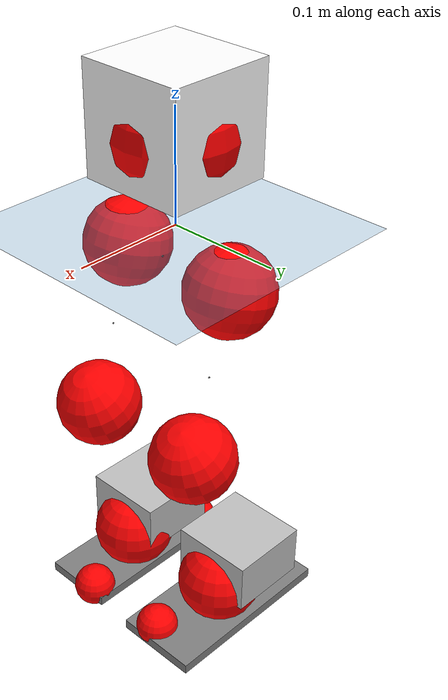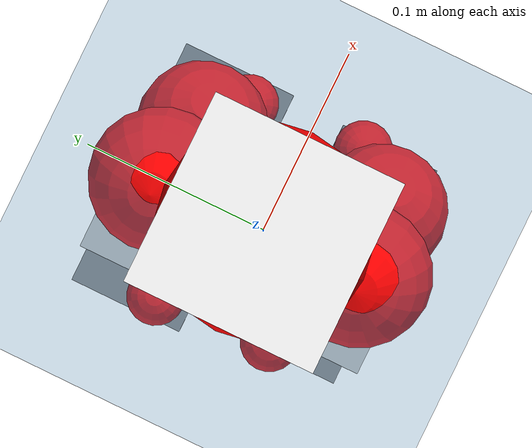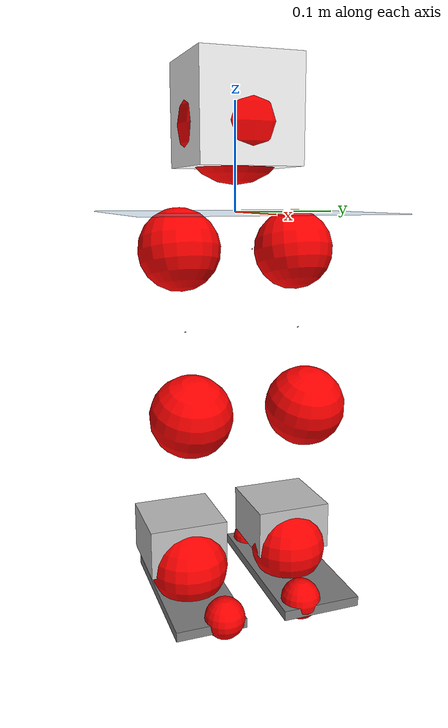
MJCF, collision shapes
<mujoco model="pi_12dof_release_v1">
  <compiler angle="radian" assetdir="assets" balanceinertia="true" inertiafromgeom="false"/>

  <option timestep="0.005" density="1.2" viscosity="2e-05"/>

  <size nkey="1"/>

  <visual>
    <quality shadowsize="8192"/>
    <map shadowclip="0.5"/>
  </visual>

  <default>
    <default class="/">
      <joint armature="0.01" damping="0.01" frictionloss="0.01"/>
      <geom contype="0" conaffinity="0" group="1" solref="-1000 -80"/>
      <site size="0.01 0.005 0.005" group="5"/>
      <general forcelimited="true" biastype="affine" gainprm="20" biasprm="0 -20 -0.5"/>
      <default class="foot">
        <geom size="0.0845 0.036 0.005" type="box" condim="6" group="4" priority="1" friction="0.9 0.2 0.2" solimp="0.015 1 0.005"/>
      </default>
      <default class="reward_collision_sphere">
        <geom group="5" rgba="1 0 0 1"/>
      </default>
    </default>
  </default>

  <asset>
    <texture type="skybox" colorspace="auto" name="//unnamed_texture_0" builtin="gradient" rgb1="0.95 0.95 0.95" rgb2="0.95 0.95 0.95" width="100" height="600"/>
    <texture type="2d" colorspace="auto" name="texplane" builtin="checker" rgb1="0.345 0.575 0.748" rgb2="0.345 0.575 0.748" markrgb="1 1 1" width="512" height="512"/>
    <material name="MatPlane" class="/" texture="texplane" texuniform="true" texrepeat="2 2" specular="0.9"/>
    <mesh name="baselink_1" class="/" file="baselink_1.STL"/>
    <mesh name="r_hip_pitch_link" class="/" file="r_hip_pitch_link.STL"/>
    <mesh name="r_hip_roll_link" class="/" file="r_hip_roll_link.STL"/>
    <mesh name="r_thigh_link" class="/" file="r_thigh_link.STL"/>
    <mesh name="r_calf_link" class="/" file="r_calf_link.STL"/>
    <mesh name="r_ankle_pitch_link" class="/" file="r_ankle_pitch_link.STL"/>
    <mesh name="r_ankle_roll_link" class="/" file="r_ankle_roll_link.STL"/>
    <mesh name="l_hip_pitch_link" class="/" file="l_hip_pitch_link.STL"/>
    <mesh name="l_hip_roll_link" class="/" file="l_hip_roll_link.STL"/>
    <mesh name="l_thigh_link" class="/" file="l_thigh_link.STL"/>
    <mesh name="l_calf_link" class="/" file="l_calf_link.STL"/>
    <mesh name="l_ankle_pitch_link" class="/" file="l_ankle_pitch_link.STL"/>
    <mesh name="l_ankle_roll_link" class="/" file="l_ankle_roll_link.STL"/>
  </asset>

  <worldbody>
    <geom name="floor" class="/" size="100 100 0.125" type="plane" group="0" material="MatPlane"/>
    <light name="toplight_shadow" class="/" pos="0 0 5" dir="0.0990148 0.0990148 -0.990148" type="directional" ambient="0.04 0.04 0.04" diffuse="0.55 0.55 0.55" specular="0.12 0.12 0.12"/>
    <light name="toplight_fill" class="/" pos="0 0 5" dir="0.0990148 0.0990148 -0.990148" type="directional" castshadow="false" ambient="0.04 0.04 0.04" diffuse="0.3 0.3 0.3" specular="0.08 0.08 0.08"/>
    <body name="trunk" pos="-0.0001964 -0.000405607 0.000351062" quat="1 -1.96542e-05 -1.15764e-05 -1.91445e-05">
      <inertial pos="0.00152534 -0.00152726 0.044616" quat="0.70045 0.0158231 0.0142704 0.713384" mass="1.96658" diaginertia="0.0118061 0.00236282 0.00695401"/>
      <joint name="//unnamed_joint_0" type="free"/>
      <geom name="//unnamed_geom_1" class="/" type="mesh" density="0" rgba="1 1 1 1" mesh="baselink_1"/>
      <geom name="//unnamed_geom_2" class="/" size="0.0484645 0.0484645 0.0484645" pos="0 0 0.0886739" type="box" rgba="1 1 1 1"/>
      <geom name="//unnamed_geom_3" class="reward_collision_sphere" size="0.0533109" pos="0 0 0.0775897"/>
      <site name="imu" class="/" pos="0.00122727 -0.00370231 -0.0019755" size="0.0096929"/>
      <camera name="track" class="/" pos="0 -1.5261 0" quat="0.707107 0.707107 0 0" mode="trackcom"/>
      <camera name="ego_camera" class="/" pos="0.0777297 0 0.199516" quat="-0.5 -0.5 0.5 0.5"/>
      <body name="r_hip_pitch_link" pos="-0.00014951 -0.015189 -0.0348288" quat="0.992221 -7.29467e-05 -0.12449 -0.000134228">
        <inertial pos="0.000807509 -0.0430959 -0.000711646" quat="-0.0195857 0.707029 -0.0299848 0.706277" mass="0.336783" diaginertia="0.00012967 2.53644e-05 0.000140065"/>
        <joint name="r_hip_pitch_joint" class="/" pos="0 0 0" axis="0.00152333 -0.999986 0.0051525" stiffness="5.21249e-05" range="-1.74539 1.26479" armature="0.00954504" damping="0.0134777" frictionloss="0.00978775"/>
        <geom name="//unnamed_geom_4" class="/" type="mesh" density="0" rgba="0.75294 0.75294 0.75294 1" mesh="r_hip_pitch_link"/>
        <geom name="//unnamed_geom_5" class="/" size="0.000484645 0.000484645 0.000484645" type="box" rgba="0.75294 0.75294 0.75294 1"/>
        <body name="r_hip_roll_link" pos="0.00136929 -0.0402527 -0.000200562" quat="1 8.30926e-06 5.75408e-05 -1.35772e-05">
          <inertial pos="-0.000733255 -0.000819987 -0.0672783" quat="0.707718 -0.082775 -0.0797837 0.697078" mass="0.354185" diaginertia="0.000400974 7.1751e-05 0.00021612"/>
          <joint name="r_hip_roll_joint" class="/" pos="0 0 0" axis="-0.999997 0.00151827 -0.00167095" stiffness="0.000878249" range="-0.116983 0.510963" armature="0.00979203" damping="0.00451818" frictionloss="0.00966429"/>
          <geom name="//unnamed_geom_6" class="/" type="mesh" density="0" rgba="0.75294 0.75294 0.75294 1" mesh="r_hip_roll_link"/>
          <geom name="//unnamed_geom_7" class="/" size="0.000484645 0.000484645 0.000484645" type="box" rgba="0.75294 0.75294 0.75294 1"/>
          <geom name="//unnamed_geom_8" class="reward_collision_sphere" size="0.0387716"/>
          <body name="r_thigh_link" pos="0.000607345 -0.000747305 -0.0767033" quat="1 6.43462e-05 -4.83975e-05 0.000332398">
            <inertial pos="0.000399086 0.000561771 -0.0545397" quat="0.737647 0.675186 0.000624384 -0.000267592" mass="0.102233" diaginertia="0.00014926 2.50697e-05 9.50051e-05"/>
            <joint name="r_thigh_joint" class="/" pos="0 0 0" axis="1.2886e-05 0.000472015 -1" range="-0.30015 0.593575" armature="0.0101572" damping="0.00604822" frictionloss="0.00971252"/>
            <geom name="//unnamed_geom_9" class="/" type="mesh" density="0" rgba="0.75294 0.75294 0.75294 1" mesh="r_thigh_link"/>
            <geom name="//unnamed_geom_10" class="/" size="0.000484645 0.000484645 0.000484645" type="box" rgba="0.75294 0.75294 0.75294 1"/>
            <body name="r_calf_link" pos="0.000132264 -0.000949918 -0.0779129" quat="0.947687 5.94155e-05 0.319202 3.74536e-06">
              <inertial pos="0.000675759 -0.0009212 -0.0775117" quat="0.999985 -0.00306293 0.000111557 0.00459432" mass="0.733312" diaginertia="0.00425831 0.000884313 0.000295179"/>
              <joint name="r_calf_joint" class="/" pos="0 0 0" axis="-0.00173462 -0.999997 -0.0018919" range="-1.60843 0.630476" armature="0.00980476" damping="0.00795772" frictionloss="0.00923776"/>
              <geom name="//unnamed_geom_11" class="/" type="mesh" density="0" rgba="0.75294 0.75294 0.75294 1" mesh="r_calf_link"/>
              <geom name="//unnamed_geom_12" class="/" size="0.000484645 0.000484645 0.000484645" type="box" rgba="0.75294 0.75294 0.75294 1"/>
              <geom name="//unnamed_geom_13" class="reward_collision_sphere" size="0.0387716"/>
              <body name="r_ankle_pitch_link" pos="0.00204314 0.00250574 -0.156311" quat="0.980008 0.000216173 -0.198958 -0.000419114">
                <inertial pos="0.00582647 0.00079287 -0.000445385" quat="4.60529e-05 0.705684 -0.00178212 0.708524" mass="0.161748" diaginertia="0.000372633 5.78747e-05 0.000204819"/>
                <joint name="r_ankle_pitch_joint" class="/" pos="0 0 0" axis="-0.00944464 -0.999953 0.00208636" stiffness="0.00111674" range="-1.31804 0.532785" armature="0.00963347" damping="0.00786729" frictionloss="0.0101289"/>
                <geom name="//unnamed_geom_14" class="/" type="mesh" density="0" rgba="0.75294 0.75294 0.75294 1" mesh="r_ankle_pitch_link"/>
                <geom name="//unnamed_geom_15" class="/" size="0.0378023 0.0387716 0.0242322" type="box" rgba="0.75294 0.75294 0.75294 1"/>
                <body name="r_ankle_roll_link" pos="0.0772837 0.00248278 -0.000103701" quat="1 -0.000193517 -0.000524718 4.02922e-05">
                  <inertial pos="-0.0257617 0.00016808 -0.0162449" quat="0.558238 0.430493 0.436274 0.559206" mass="0.474167" diaginertia="0.00135303 0.000266499 0.000469833"/>
                  <joint name="r_ankle_roll_joint" class="/" pos="0 0 0" axis="-0.999999 0.000335532 0.00105875" range="-0.187491 0.151223" armature="0.0095948" damping="0.0129588" frictionloss="0.0101315"/>
                  <geom name="//unnamed_geom_16" class="/" type="mesh" density="0" rgba="0.75294 0.75294 0.75294 1" mesh="r_ankle_roll_link"/>
                  <geom name="//unnamed_geom_17" class="/" type="mesh" rgba="0.75294 0.75294 0.75294 1" mesh="r_ankle_roll_link"/>
                  <geom name="right_foot" class="foot" size="0.0773855 0.0341549 0.00459156" pos="-0.0528562 0 -0.0487706"/>
                  <geom name="//unnamed_geom_19" class="reward_collision_sphere" size="0.0387716" pos="-0.0518198 0 -0.0221685"/>
                  <geom name="//unnamed_geom_20" class="reward_collision_sphere" size="0.0193858" pos="0.0155459 0.015261 -0.0443369"/>
                  <geom name="//unnamed_geom_21" class="reward_collision_sphere" size="0.0193858" pos="-0.124367 0.015261 -0.0443369"/>
                  <site name="right_foot" class="foot" pos="-0.0528562 0 -0.0487706" size="0.0096929"/>
                </body>
              </body>
            </body>
          </body>
        </body>
      </body>
      <body name="l_hip_pitch_link" pos="-0.000969881 0.0175886 -0.0356399" quat="0.992168 0.000112196 -0.124912 -0.000294649">
        <inertial pos="0.000831604 0.0400602 -0.00125017" quat="-0.0407277 0.704518 0.0292719 0.707911" mass="0.348106" diaginertia="0.000151458 2.68652e-05 0.000165964"/>
        <joint name="l_hip_pitch_joint" class="/" pos="0 0 0" axis="-0.00095113 0.999999 0.00108312" range="-1.2492 1.75071" armature="0.00974418" damping="0.000663407" frictionloss="0.00957312"/>
        <geom name="//unnamed_geom_22" class="/" type="mesh" density="0" rgba="0.75294 0.75294 0.75294 1" mesh="l_hip_pitch_link"/>
        <geom name="//unnamed_geom_23" class="/" size="0.000484645 0.000484645 0.000484645" type="box" rgba="0.75294 0.75294 0.75294 1"/>
        <body name="l_hip_roll_link" pos="0.000798848 0.0427554 -0.00159709" quat="1 -5.44745e-06 3.20845e-05 6.24551e-06">
          <inertial pos="-0.000866492 -0.00044792 -0.0694692" quat="0.700634 -0.073543 -0.0755104 0.705692" mass="0.358885" diaginertia="0.000395459 7.01064e-05 0.00021161"/>
          <joint name="l_hip_roll_joint" class="/" pos="0 0 0" axis="-1 0.000139114 -0.000237601" range="-0.532966 0.112223" armature="0.0100024" damping="0.00713662" frictionloss="0.00925037"/>
          <geom name="//unnamed_geom_24" class="/" type="mesh" density="0" rgba="0.75294 0.75294 0.75294 1" mesh="l_hip_roll_link"/>
          <geom name="//unnamed_geom_25" class="/" size="0.000484645 0.000484645 0.000484645" type="box" rgba="0.75294 0.75294 0.75294 1"/>
          <geom name="//unnamed_geom_26" class="reward_collision_sphere" size="0.0387716"/>
          <body name="l_thigh_link" pos="0.000459598 -0.00238513 -0.0765062" quat="1 1.21019e-05 9.097e-05 3.08095e-05">
            <inertial pos="0.000532939 -0.00139704 -0.0524862" quat="0.675548 0.737316 0.000504639 -0.000131524" mass="0.101175" diaginertia="0.000150332 2.43333e-05 9.60498e-05"/>
            <joint name="l_thigh_joint" class="/" pos="0 0 0" axis="0.000171734 5.17579e-05 -1" range="-0.590515 0.29589" armature="0.00995439" damping="0.00132578" frictionloss="0.00977055"/>
            <geom name="//unnamed_geom_27" class="/" type="mesh" density="0" rgba="0.75294 0.75294 0.75294 1" mesh="l_thigh_link"/>
            <geom name="//unnamed_geom_28" class="/" size="0.000484645 0.000484645 0.000484645" type="box" rgba="0.75294 0.75294 0.75294 1"/>
            <body name="l_calf_link" pos="-0.000840115 0.000150037 -0.0767676" quat="0.947761 -5.34523e-05 0.31898 0.000273404">
              <inertial pos="-0.000215923 0.00306242 -0.0778461" quat="0.999988 0.00226677 4.63406e-05 0.00445371" mass="0.732282" diaginertia="0.0041861 0.000886801 0.00029481"/>
              <joint name="l_calf_joint" class="/" pos="0 0 0" axis="0.000892117 0.999996 -0.00253132" range="-0.650067 1.67133" armature="0.0093899" damping="0.00615706" frictionloss="0.00928852"/>
              <geom name="//unnamed_geom_29" class="/" type="mesh" density="0" rgba="0.75294 0.75294 0.75294 1" mesh="l_calf_link"/>
              <geom name="//unnamed_geom_30" class="/" size="0.000484645 0.000484645 0.000484645" type="box" rgba="0.75294 0.75294 0.75294 1"/>
              <geom name="//unnamed_geom_31" class="reward_collision_sphere" size="0.0387716"/>
              <body name="l_ankle_pitch_link" pos="-0.000216482 0.00152652 -0.15556" quat="0.980078 -0.000179103 -0.198612 0.00071526">
                <inertial pos="0.00507208 -0.0018651 -0.000910417" quat="-0.00222622 0.707282 0.00231154 0.706924" mass="0.161062" diaginertia="0.00037211 5.75803e-05 0.000201897"/>
                <joint name="l_ankle_pitch_joint" class="/" pos="0 0 0" axis="0.00221031 0.999997 -0.00118244" stiffness="0.00304477" range="-0.521218 1.29717" armature="0.00990837" damping="0.00646617" frictionloss="0.00967267"/>
                <geom name="//unnamed_geom_32" class="/" type="mesh" density="0" rgba="0.75294 0.75294 0.75294 1" mesh="l_ankle_pitch_link"/>
                <geom name="//unnamed_geom_33" class="/" size="0.0378023 0.0387716 0.0242322" type="box" rgba="0.75294 0.75294 0.75294 1"/>
                <body name="l_ankle_roll_link" pos="0.0758205 -0.00138921 0.000170318" quat="1 9.81303e-05 -0.000257521 -0.000470644">
                  <inertial pos="-0.02339 -0.000256845 -0.0152852" quat="0.561176 0.43028 0.430186 0.561143" mass="0.471847" diaginertia="0.00137655 0.000268473 0.000474722"/>
                  <joint name="l_ankle_roll_joint" class="/" pos="0 0 0" axis="-0.999944 0.0105779 0.000527212" range="-0.115837 0.148665" armature="0.0104196" damping="0.0165147" frictionloss="0.00922492"/>
                  <geom name="//unnamed_geom_34" class="/" type="mesh" density="0" rgba="0.75294 0.75294 0.75294 1" mesh="l_ankle_roll_link"/>
                  <geom name="//unnamed_geom_35" class="/" type="mesh" rgba="0.75294 0.75294 0.75294 1" mesh="l_ankle_roll_link"/>
                  <geom name="left_foot" class="foot" size="0.085827 0.0390448 0.00476807" pos="-0.0528562 0 -0.0487706"/>
                  <geom name="//unnamed_geom_37" class="reward_collision_sphere" size="0.0387716" pos="-0.0518198 0 -0.0221685"/>
                  <geom name="//unnamed_geom_38" class="reward_collision_sphere" size="0.0193858" pos="0.0155459 -0.015261 -0.0443369"/>
                  <geom name="//unnamed_geom_39" class="reward_collision_sphere" size="0.0193858" pos="-0.124367 -0.015261 -0.0443369"/>
                  <site name="left_foot" class="foot" pos="-0.0528562 0 -0.0487706" size="0.0096929"/>
                </body>
              </body>
            </body>
          </body>
        </body>
      </body>
    </body>
  </worldbody>

  <contact>
    <pair class="/" geom1="floor" geom2="right_foot" name="//unnamed_contact_1"/>
    <pair class="/" geom1="floor" geom2="left_foot" name="//unnamed_contact_0"/>
  </contact>

  <actuator>
    <general name="r_hip_pitch_joint" class="/" joint="r_hip_pitch_joint" forcerange="-20.6338 20.6338" gainprm="19.7585" biasprm="0 -19.7585 -0.478876"/>
    <general name="r_hip_roll_joint" class="/" joint="r_hip_roll_joint" forcerange="-20.2643 20.2643" gainprm="19.7585" biasprm="0 -19.7585 -0.478876"/>
    <general name="r_thigh_joint" class="/" joint="r_thigh_joint" forcerange="-20.277 20.277" gainprm="19.7585" biasprm="0 -19.7585 -0.478876"/>
    <general name="r_calf_joint" class="/" joint="r_calf_joint" forcerange="-19.426 19.426" gainprm="19.7585" biasprm="0 -19.7585 -0.478876"/>
    <general name="r_ankle_pitch_joint" class="/" joint="r_ankle_pitch_joint" forcerange="-21.5234 21.5234" gainprm="19.7585" biasprm="0 -19.7585 -0.478876"/>
    <general name="r_ankle_roll_joint" class="/" joint="r_ankle_roll_joint" forcerange="-21.5378 21.5378" gainprm="19.7585" biasprm="0 -19.7585 -0.478876"/>
    <general name="l_hip_pitch_joint" class="/" joint="l_hip_pitch_joint" forcerange="-21.9749 21.9749" gainprm="19.7585" biasprm="0 -19.7585 -0.478876"/>
    <general name="l_hip_roll_joint" class="/" joint="l_hip_roll_joint" forcerange="-20.5456 20.5456" gainprm="19.7585" biasprm="0 -19.7585 -0.478876"/>
    <general name="l_thigh_joint" class="/" joint="l_thigh_joint" forcerange="-20.8546 20.8546" gainprm="19.7585" biasprm="0 -19.7585 -0.478876"/>
    <general name="l_calf_joint" class="/" joint="l_calf_joint" forcerange="-21.5648 21.5648" gainprm="19.7585" biasprm="0 -19.7585 -0.478876"/>
    <general name="l_ankle_pitch_joint" class="/" joint="l_ankle_pitch_joint" forcerange="-21.5489 21.5489" gainprm="19.7585" biasprm="0 -19.7585 -0.478876"/>
    <general name="l_ankle_roll_joint" class="/" joint="l_ankle_roll_joint" forcerange="-20.1071 20.1071" gainprm="19.7585" biasprm="0 -19.7585 -0.478876"/>
  </actuator>

  <sensor>
    <gyro site="imu" name="imu_angular_velocity"/>
    <velocimeter site="imu" name="imu_linear_velocity"/>
    <framelinvel objtype="site" objname="left_foot" name="left_foot_global_linear_velocity"/>
    <framelinvel objtype="site" objname="right_foot" name="right_foot_global_linear_velocity"/>
  </sensor>

  <keyframe>
    <key name="home" qpos="0 0 0.291 1 0 0 0 0.4 0 0 -0.8 0.4 0 -0.4 0 0 0.8 -0.4 0"/>
  </keyframe>
</mujoco>
